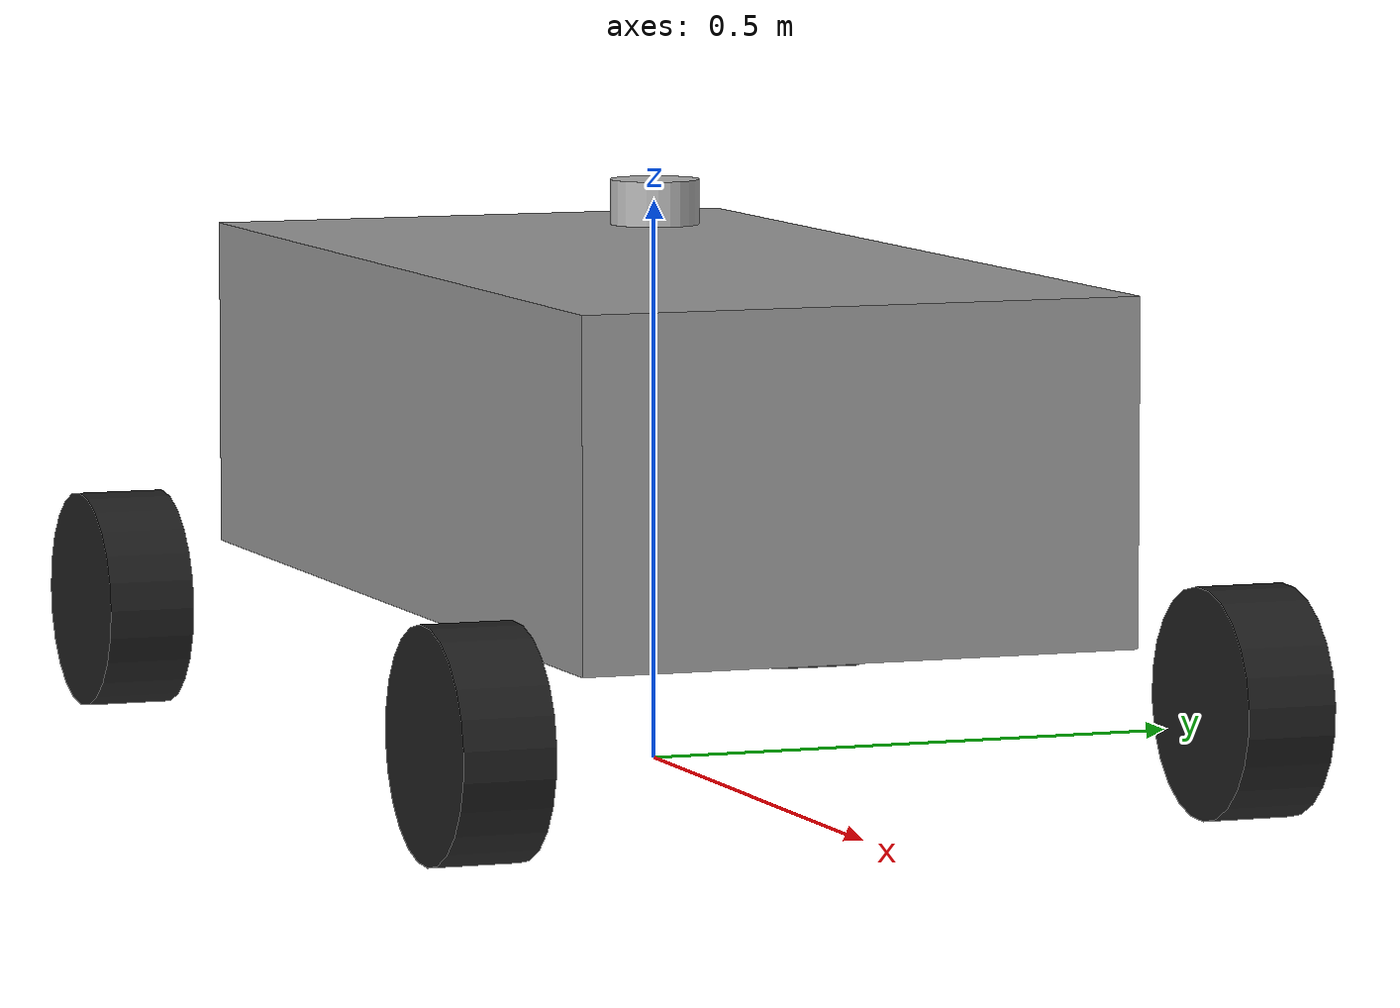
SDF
<?xml version="1.0" ?>

<sdf version="1.5">
  <model name="teapot">
    <link name="chassis">
      <pose>0 0 0.30000000000000004  0 0 0</pose>
      <inertial>
        <pose>0.1 0 0  0 0 0</pose>
        <mass>10</mass>
        <inertia>
          <ixx>0.2833333333333333</ixx>
          <iyy>0.9083333333333334</iyy>
          <izz>1.0416666666666667</izz>
          <ixy>0</ixy>
          <ixz>0</ixz>
          <iyz>0</iyz>
        </inertia>
      </inertial>
      <collision name="collision">
        <geometry>
          <box>
            <size>1.0 0.5 0.3</size>
          </box>
        </geometry>
      </collision>
      <visual name="visual">
        <geometry>
          <box>
            <size>1.0 0.5 0.3</size>
          </box>
        </geometry>
        <material>
          <script>
            <uri>file://media/materials/scripts/gazebo.material</uri>
            <name>Gazebo/Grey</name>
          </script>
        </material>
      </visual>
    </link>

    <link name="wheel_fl">
      <pose>
        0.5 0.348 0.1
        -1.5707963267948966 -0.08726646259971647 0
      </pose>
      <inertial>
        <mass>0.5</mass>
        <inertia>
          <ixx>0.001516666666666667</ixx>
          <iyy>0.001516666666666667</iyy>
          <izz>0.0025000000000000005</izz>
          <ixy>0</ixy>
          <ixz>0</ixz>
          <iyz>0</iyz>
        </inertia>
      </inertial>
      <collision name="collision">
        <geometry>
          <cylinder>
            <radius>0.1</radius>
            <length>0.08</length>
          </cylinder>
        </geometry>
      </collision>
      <visual name="visual">
        <geometry>
          <cylinder>
            <radius>0.1</radius>
            <length>0.08</length>
          </cylinder>
        </geometry>
        <material>
          <script>
            <uri>file://media/materials/scripts/gazebo.material</uri>
            <name>Gazebo/Black</name>
          </script>
        </material>
      </visual>
    </link>

    <joint name="wheel_fl_steer" type="universal">
      <parent>chassis</parent>
      <child>wheel_fl</child>
      <axis>
        <xyz>0 -1 0</xyz>
        <limit>
          <lower>-1.3089969389957472</lower>
          <upper>1.3089969389957472</upper>
        </limit>
      </axis>
      <axis2>
        <xyz>0 0 1</xyz>
      </axis2>
    </joint>

    <link name="wheel_fr">
      <pose>
        0.5 -0.348 0.1
        -1.5707963267948966 -0.08726646259971647 0
      </pose>
      <inertial>
        <mass>0.5</mass>
        <inertia>
          <ixx>0.001516666666666667</ixx>
          <iyy>0.001516666666666667</iyy>
          <izz>0.0025000000000000005</izz>
          <ixy>0</ixy>
          <ixz>0</ixz>
          <iyz>0</iyz>
        </inertia>
      </inertial>
      <collision name="collision">
        <geometry>
          <cylinder>
            <radius>0.1</radius>
            <length>0.08</length>
          </cylinder>
        </geometry>
      </collision>
      <visual name="visual">
        <geometry>
          <cylinder>
            <radius>0.1</radius>
            <length>0.08</length>
          </cylinder>
        </geometry>
        <material>
          <script>
            <uri>file://media/materials/scripts/gazebo.material</uri>
            <name>Gazebo/Black</name>
          </script>
        </material>
      </visual>
    </link>

    <joint name="wheel_fr_steer" type="universal">
      <parent>chassis</parent>
      <child>wheel_fr</child>
      <axis>
        <xyz>0 -1 0</xyz>
        <limit>
          <lower>-1.3089969389957472</lower>
          <upper>1.3089969389957472</upper>
        </limit>
      </axis>
      <axis2>
        <xyz>0 0 1</xyz>
      </axis2>
    </joint>

    <link name="wheel_rl">
      <pose>-0.5 0.348 0.1  -1.5707963267948966 0 0</pose>
      <inertial>
        <mass>0.5</mass>
        <inertia>
          <ixx>0.001516666666666667</ixx>
          <iyy>0.001516666666666667</iyy>
          <izz>0.0025000000000000005</izz>
          <ixy>0</ixy>
          <ixz>0</ixz>
          <iyz>0</iyz>
        </inertia>
      </inertial>
      <collision name="collision">
        <geometry>
          <cylinder>
            <radius>0.1</radius>
            <length>0.08</length>
          </cylinder>
        </geometry>
      </collision>
      <visual name="visual">
        <geometry>
          <cylinder>
            <radius>0.1</radius>
            <length>0.08</length>
          </cylinder>
        </geometry>
        <material>
          <script>
            <uri>file://media/materials/scripts/gazebo.material</uri>
            <name>Gazebo/Black</name>
          </script>
        </material>
      </visual>
    </link>
    <joint name="wheel_rl_drive" type="revolute">
      <parent>chassis</parent>
      <child>wheel_rl</child>
      <axis>
        <xyz>0 0 1</xyz>
      </axis>
    </joint>

    <link name="wheel_rr">
      <pose>-0.5 -0.348 0.1  -1.5707963267948966 0 0</pose>
      <inertial>
        <mass>0.5</mass>
        <inertia>
          <ixx>0.001516666666666667</ixx>
          <iyy>0.001516666666666667</iyy>
          <izz>0.0025000000000000005</izz>
          <ixy>0</ixy>
          <ixz>0</ixz>
          <iyz>0</iyz>
        </inertia>
      </inertial>
      <collision name="collision">
        <geometry>
          <cylinder>
            <radius>0.1</radius>
            <length>0.08</length>
          </cylinder>
        </geometry>
      </collision>
      <visual name="visual">
        <geometry>
          <cylinder>
            <radius>0.1</radius>
            <length>0.08</length>
          </cylinder>
        </geometry>
        <material>
          <script>
            <uri>file://media/materials/scripts/gazebo.material</uri>
            <name>Gazebo/Black</name>
          </script>
        </material>
      </visual>
    </link>
    <joint name="wheel_rr_drive" type="revolute">
      <parent>chassis</parent>
      <child>wheel_rr</child>
      <axis>
        <xyz>0 0 1</xyz>
      </axis>
    </joint>

    <include>
      <uri>model://rplidar_a2</uri>
      <pose>0.0 0 0.5 0 0 0</pose>
    </include>
    <joint name="lidar_joint" type="fixed">
      <child>rplidar_a2::link</child>
      <parent>chassis</parent>
    </joint>
  </model>
</sdf>

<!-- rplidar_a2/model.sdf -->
<sdf version="1.0">
  <model name="rplidar_a2">
    <pose>0 0 0.02 0 0 0</pose>
    <link name="link">
      <inertial>
        <mass>0.1</mass>
      </inertial>
      <visual name="visual">
        <geometry>
          <cylinder>
            <radius>0.04</radius>
            <length>0.04</length>
          </cylinder>
        </geometry>
      </visual>
      <collision name="collision-base">
        <pose>0 0 -0.0145 0 0 0</pose>
        <geometry>
          <box>
            <size>0.05 0.05 0.041</size>
          </box>
        </geometry>
      </collision>
      <collision name="collision-top">
        <pose>0 0 0.0205 0 0 0</pose>
        <geometry>
          <cylinder>
            <radius>0.021</radius>
            <length>0.029</length>
          </cylinder>
        </geometry>
      </collision>
      <sensor name="laser" type="ray">
        <pose>
          0.01 0.0 0.0175
          0.0 -0.0 0.0
        </pose>
        <ray>
          <scan>
            <horizontal>
              <samples>400</samples>
              <resolution>1</resolution>
              <min_angle>-3.14159265</min_angle>
              <max_angle>3.14159265</max_angle>
            </horizontal>
          </scan>
          <range>
            <min>0.08</min>
            <max>9.0</max>
            <resolution>0.01</resolution>
          </range>
        </ray>
        <plugin name="laser" filename="libRayPlugin.so" />
        <always_on>1</always_on>
        <update_rate>30</update_rate>
        <visualize>true</visualize>
      </sensor>
    </link>
  </model>
</sdf>
